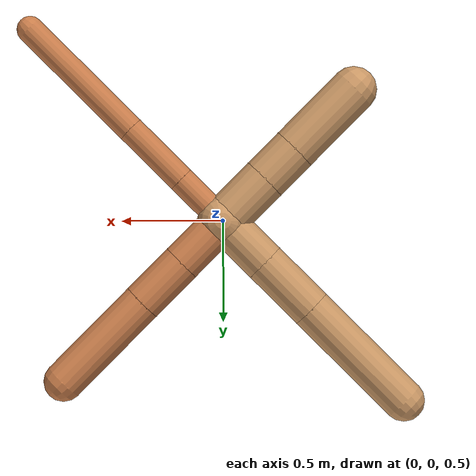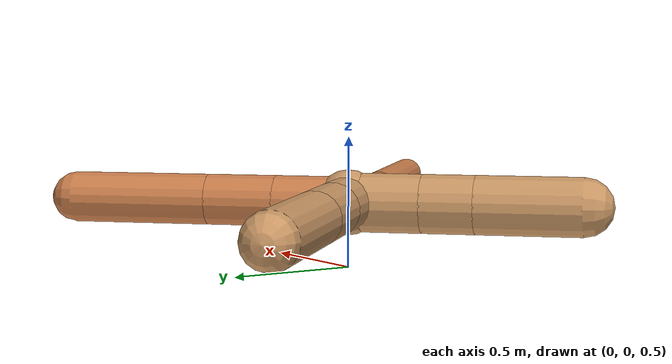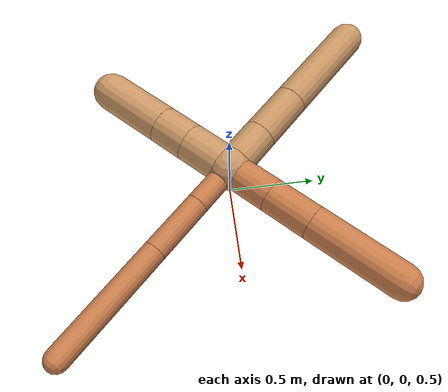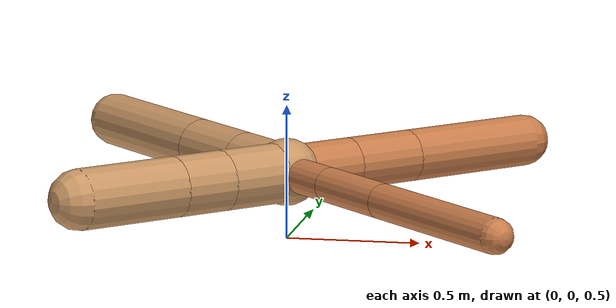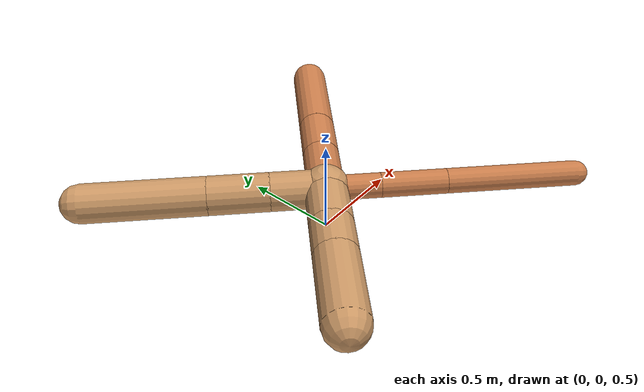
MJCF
<?xml version="1.0" ?>
<mujoco model="ant">

	<compiler angle="degree" coordinate="local" inertiafromgeom="true"/>

	<option integrator="RK4" timestep="0.01"/>

	<custom>

		<numeric data="0.0 0.0 0.55 1.0 0.0 0.0 0.0 0.0 1.0 0.0 -1.0 0.0 -1.0 0.0 1.0" name="init_qpos"/>

	</custom>

	<default>

		<joint armature="1" damping="1" limited="true"/>

		<geom conaffinity="0" condim="3" density="5.0" friction="1.5 0.1 0.1" margin="0.01" rgba="0.8 0.6 0.4 1"/>

	</default>

	<worldbody>

		<body name="torso" pos="0 0 0.75">

			<geom name="torso_geom" pos="0 0 0" size="0.1250870916620621" type="sphere"/>

			<!--joint armature="0" damping="0" limited="false" margin="0.01" name="root" pos="0 0 0" type="free"/-->

			<body name="front_left_leg" pos="0 0 0">

				<geom fromto="0 0 0 0.2 0.2 0" name="aux_1_geom" size="0.09767414845173505" type="capsule" rgba=".8 .5 .3 1"/>

				<body name="aux_1" pos="0.2 0.2 0">

					<joint axis="0 0 1" name="hip_1" pos="0.0 0.0 0.0" range="-40 40" type="hinge"/>

					<geom fromto="0 0 0 0.189621484560229 0.189621484560229 0" name="left_leg_geom" size="0.09767414845173505" type="capsule" rgba=".8 .5 .3 1"/>

					<body pos="0.189621484560229 0.189621484560229 0" name="front_left_foot">

						<joint axis="-1 1 0" name="ankle_1" pos="0.0 0.0 0.0" range="30 100" type="hinge"/>

						<geom fromto="0 0 0 0.379242969120458 0.379242969120458 0" name="left_ankle_geom" size="0.09767414845173505" type="capsule" rgba=".8 .5 .3 1"/>

					</body>

				</body>

			</body>

			<body name="front_right_leg" pos="0 0 0">

				<geom fromto="0 0 0 -0.2 0.2 0" name="aux_2_geom" size="0.10131204987302858" type="capsule"/>

				<body name="aux_2" pos="-0.2 0.2 0">

					<joint axis="0 0 1" name="hip_2" pos="0.0 0.0 0.0" range="-40 40" type="hinge"/>

					<geom fromto="0 0 0 -0.222056939269855 0.222056939269855 0" name="right_leg_geom" size="0.10131204987302858" type="capsule"/>

					<body pos="-0.222056939269855 0.222056939269855 0" name="front_right_foot">

						<joint axis="1 1 0" name="ankle_2" pos="0.0 0.0 0.0" range="-100 -30" type="hinge"/>

						<geom fromto="0 0 0 -0.44411387853971 0.44411387853971 0" name="right_ankle_geom" size="0.10131204987302858" type="capsule"/>

					</body>

				</body>

			</body>

			<body name="left_back_leg" pos="0 0 0">

				<geom fromto="0 0 0 -0.2 -0.2 0" name="aux_3_geom" size="0.11257157799004007" type="capsule"/>

				<body name="aux_3" pos="-0.2 -0.2 0">

					<joint axis="0 0 1" name="hip_3" pos="0.0 0.0 0.0" range="-40 40" type="hinge"/>

					<geom fromto="0 0 0 -0.14347491460117315 -0.14347491460117315 0" name="back_leg_geom" size="0.11257157799004007" type="capsule"/>

					<body pos="-0.14347491460117315 -0.14347491460117315 0" name="left_back_foot">

						<joint axis="-1 1 0" name="ankle_3" pos="0.0 0.0 0.0" range="-100 -30" type="hinge"/>

						<geom fromto="0 0 0 -0.2869498292023463 -0.2869498292023463 0" name="third_ankle_geom" size="0.11257157799004007" type="capsule"/>

					</body>

				</body>

			</body>

			<body name="right_back_leg" pos="0 0 0">

				<geom fromto="0 0 0 0.2 -0.2 0" name="aux_4_geom" size="0.06529462144430967" type="capsule" rgba=".8 .5 .3 1"/>

				<body name="aux_4" pos="0.2 -0.2 0">

					<joint axis="0 0 1" name="hip_4" pos="0.0 0.0 0.0" range="-40 40" type="hinge"/>

					<geom fromto="0 0 0 0.24143147532062353 -0.24143147532062353 0" name="rightback_leg_geom" size="0.06529462144430967" type="capsule" rgba=".8 .5 .3 1"/>

					<body pos="0.24143147532062353 -0.24143147532062353 0" name="right_back_foot">

						<joint axis="1 1 0" name="ankle_4" pos="0.0 0.0 0.0" range="30 100" type="hinge"/>

						<geom fromto="0 0 0 0.48286295064124707 -0.48286295064124707 0" name="fourth_ankle_geom" size="0.06529462144430967" type="capsule" rgba=".8 .5 .3 1"/>

					</body>

				</body>

			</body>

		</body>

	</worldbody>

	<actuator>

		<motor ctrllimited="true" ctrlrange="-1.0 1.0" joint="hip_4" gear="150"/>

		<motor ctrllimited="true" ctrlrange="-1.0 1.0" joint="ankle_4" gear="150"/>

		<motor ctrllimited="true" ctrlrange="-1.0 1.0" joint="hip_1" gear="150"/>

		<motor ctrllimited="true" ctrlrange="-1.0 1.0" joint="ankle_1" gear="150"/>

		<motor ctrllimited="true" ctrlrange="-1.0 1.0" joint="hip_2" gear="150"/>

		<motor ctrllimited="true" ctrlrange="-1.0 1.0" joint="ankle_2" gear="150"/>

		<motor ctrllimited="true" ctrlrange="-1.0 1.0" joint="hip_3" gear="150"/>

		<motor ctrllimited="true" ctrlrange="-1.0 1.0" joint="ankle_3" gear="150"/>

	</actuator>

</mujoco>
